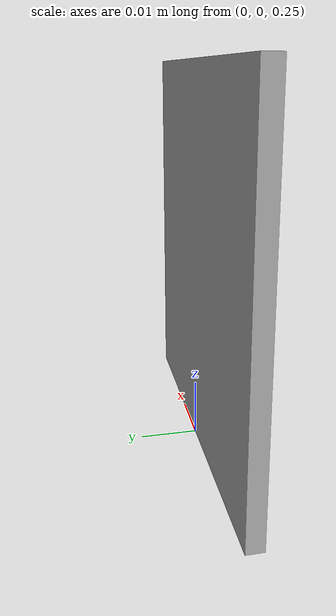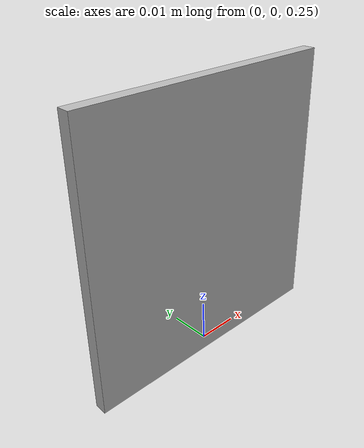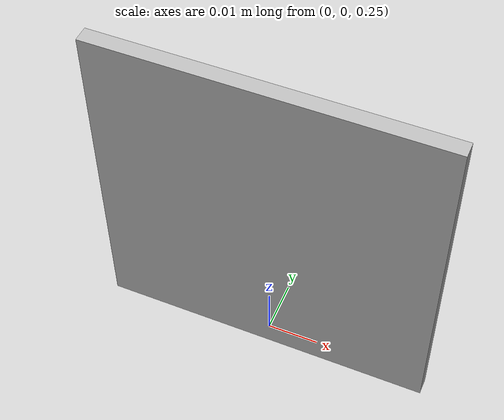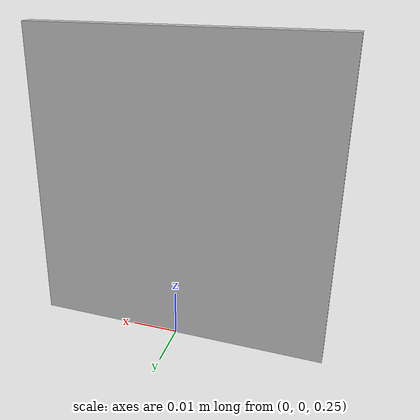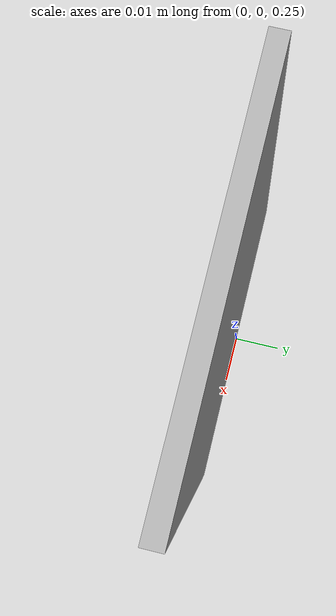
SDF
<?xml version="1.0"?>
<sdf version="1.5">
  <model name="docking">
    <static>true</static>
    <pose>0 0 0.25 0 0 0</pose>
    <link name="link">
      <collision name="collision">
        <pose>0 0 0 1.5707963267949 0 0</pose>
        <geometry>
          <mesh>
            <uri>file://dd_docking/mesh/docking.STL</uri>
          </mesh>
        </geometry>
      </collision>
      <visual name="visual">
        <pose>0 0 0 1.5707963267949 0 0</pose>
        <geometry>
          <mesh>
            <uri>file://dd_docking/mesh/docking.STL</uri>
          </mesh>
        </geometry>
      </visual>
    </link>
  </model>
</sdf>
